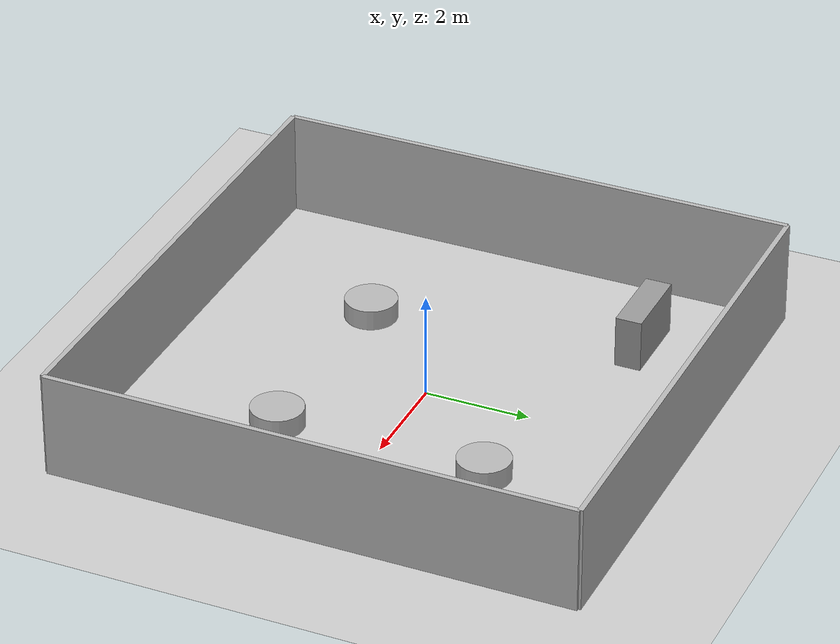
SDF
<sdf version="1.6">
 <world name="restaurant_world">
  <include><uri>model://sun</uri></include>
  <include><uri>model://ground_plane</uri></include>
  <model name="wall_front">
   <pose>0 5 1 0 0 0</pose>
   <link name="link">
    <visual name="visual"><geometry><box><size>10 0.1 2</size></box></geometry></visual>
    <collision name="collision"><geometry><box><size>10 0.1 2</size></box></geometry></collision>
   </link>
  </model>
  <model name="wall_back">
   <pose>0 -5 1 0 0 0</pose>
   <link name="link">
    <visual name="visual"><geometry><box><size>10 0.1 2</size></box></geometry></visual>
    <collision name="collision"><geometry><box><size>10 0.1 2</size></box></geometry></collision>
   </link>
  </model>
  <model name="wall_left">
   <pose>-5 0 1 0 0 0</pose>
   <link name="link">
    <visual name="visual"><geometry><box><size>0.1 10 2</size></box></geometry></visual>
    <collision name="collision"><geometry><box><size>0.1 10 2</size></box></geometry></collision>
   </link>
  </model>
  <model name="wall_right">
   <pose>5 0 1 0 0 0</pose>
   <link name="link">
    <visual name="visual"><geometry><box><size>0.1 10 2</size></box></geometry></visual>
    <collision name="collision"><geometry><box><size>0.1 10 2</size></box></geometry></collision>
   </link>
  </model>
  <model name="table1">
   <pose>2 2 0 0 0 0</pose>
   <link name="link">
    <visual name="visual">
     <geometry><cylinder><radius>0.5</radius><length>0.75</length></cylinder></geometry>
    </visual>
    <collision name="collision">
     <geometry><cylinder><radius>0.5</radius><length>0.75</length></cylinder></geometry>
    </collision>
   </link>
  </model>
  <model name="table2">
   <pose>-2 -2 0 0 0 0</pose>
   <link name="link">
    <visual name="visual">
     <geometry><cylinder><radius>0.5</radius><length>0.75</length></cylinder></geometry>
    </visual>
    <collision name="collision">
     <geometry><cylinder><radius>0.5</radius><length>0.75</length></cylinder></geometry>
    </collision>
   </link>
  </model>
  <model name="table3">
   <pose>2 -2 0 0 0 0</pose>
   <link name="link">
    <visual name="visual">
     <geometry><cylinder><radius>0.5</radius><length>0.75</length></cylinder></geometry>
    </visual>
    <collision name="collision">
     <geometry><cylinder><radius>0.5</radius><length>0.75</length></cylinder></geometry>
    </collision>
   </link>
  </model>
  <model name="kitchen_counter">
   <pose>-3 3 0.5 0 0 0</pose>
   <link name="link">
    <visual name="visual">
     <geometry><box><size>1.5 0.5 1</size></box></geometry>
     <material>
      <script><uri>file://media/materials/scripts/gazebo.material</uri><name>Gazebo/Gray</name></script>
     </material>
    </visual>
    <collision name="collision"><geometry><box><size>1.5 0.5 1</size></box></geometry></collision>
   </link>
  </model>
 </world>
</sdf>
